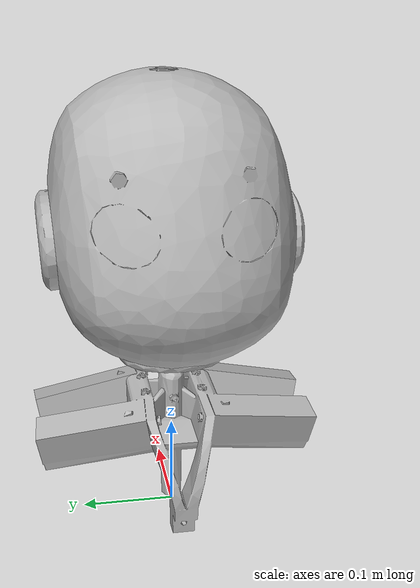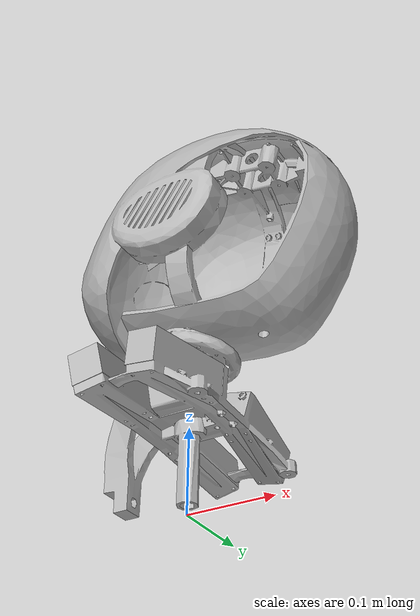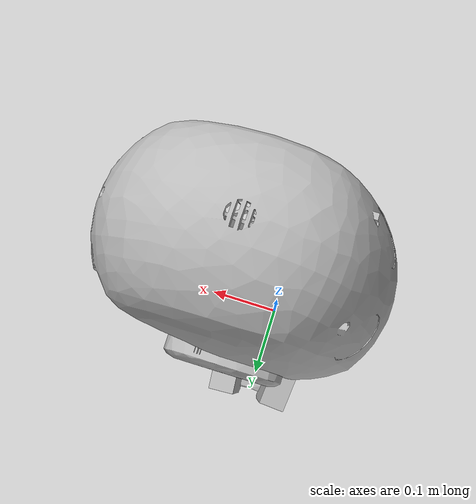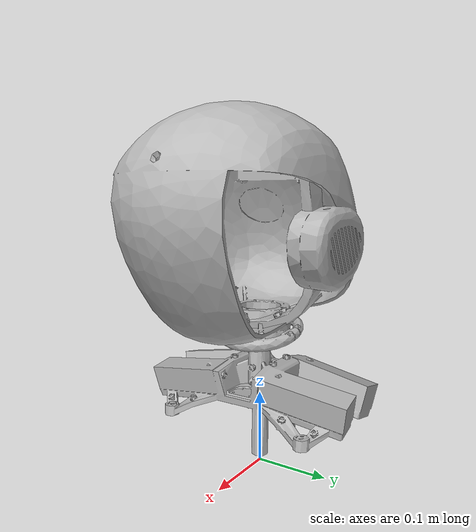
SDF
<?xml version="1.0" ?>
<sdf version="1.6">
	<model name="roboy_head">
		<link name="head">
			<self_collide>false</self_collide>
			<pose frame="">0.043343116521825514 -0.0006579231032706307 0.32988648983908875 0.0 -0.0 0.0</pose>
			<inertial>
				<pose frame="">0.0 0.0 0.0 0 0 0</pose>
				<mass>2.0916027365726584</mass>
				<inertia>
					<ixx>0.2541668972141082</ixx>
					<ixy>9.265988649279845e-05</ixy>
					<ixz>0.0005770293027702119</ixz>
					<iyy>0.2646742622361008</iyy>
					<iyz>-0.032533217727812896</iyz>
					<izz>0.030488313655092237</izz>
				</inertia>
			</inertial>
			<collision name="head_collision">
				<geometry>
					<mesh>
						<uri>model://roboy_head/meshes/CAD/head.stl</uri>
						<scale>0.001 0.001 0.001</scale>
					</mesh>
				</geometry>
			</collision>
			<visual name="head_visual">
				<geometry>
					<mesh>
						<uri>model://roboy_head/meshes/CAD/head.stl</uri>
						<scale>0.001 0.001 0.001</scale>
					</mesh>
				</geometry>
			</visual>
		</link>
		<link name="torso">
			<self_collide>false</self_collide>
			<pose frame="">0.0 0.0 0.0 0.0 -0.0 0.0</pose>
			<inertial>
				<pose frame="">0.0 0.0 0.0 0 0 0</pose>
				<mass>5.001617084376403</mass>
				<inertia>
					<ixx>0.11225493270614519</ixx>
					<ixy>1.951523120337626e-06</ixy>
					<ixz>1.074924932641358e-07</ixz>
					<iyy>0.07892378546233529</iyy>
					<iyz>0.0005212445483936204</iyz>
					<izz>0.048924511948167305</izz>
				</inertia>
			</inertial>
			<collision name="torso_collision">
				<geometry>
					<mesh>
						<uri>model://roboy_head/meshes/CAD/torso.stl</uri>
						<scale>0.001 0.001 0.001</scale>
					</mesh>
				</geometry>
			</collision>
			<visual name="torso_visual">
				<geometry>
					<mesh>
						<uri>model://roboy_head/meshes/CAD/torso.stl</uri>
						<scale>0.001 0.001 0.001</scale>
					</mesh>
				</geometry>
			</visual>
		</link>
		<link name="sphere_link1">
			<self_collide>false</self_collide>
			<pose frame="">-2.509171502433927e-17 8.237691567918458e-16 0.18105290871626692 0.0 -0.0 0.0</pose>
			<inertial>
				<pose frame="">0.0 0.0 0.0 0 0 0</pose>
				<mass>0.02393810080236979</mass>
				<inertia>
					<ixx>0.0007866522307299437</ixx>
					<ixy>-4.77048955893622e-22</ixy>
					<ixz>-3.584285646063279e-18</ixz>
					<iyy>0.0007866522307299437</iyy>
					<iyz>8.465450562766819e-20</iyz>
					<izz>1.957557958447956e-06</izz>
				</inertia>
			</inertial>
			<collision name="sphere_link1_collision">
				<geometry>
					<mesh>
						<uri>model://roboy_head/meshes/CAD/sphere_link1.stl</uri>
						<scale>0.001 0.001 0.001</scale>
					</mesh>
				</geometry>
			</collision>
			<visual name="sphere_link1_visual">
				<geometry>
					<mesh>
						<uri>model://roboy_head/meshes/CAD/sphere_link1.stl</uri>
						<scale>0.001 0.001 0.001</scale>
					</mesh>
				</geometry>
			</visual>
		</link>
		<link name="shere_link2">
			<self_collide>false</self_collide>
			<pose frame="">-5.4526262094523686e-17 -4.3737588107742814e-11 0.18105290865270035 0.0 -0.0 0.0</pose>
			<inertial>
				<pose frame="">0.0 0.0 0.0 0 0 0</pose>
				<mass>0.01604641725998077</mass>
				<inertia>
					<ixx>0.0005268883458331765</ixx>
					<ixy>5.800481622797449e-22</ixy>
					<ixz>1.3338525145512037e-13</ixz>
					<iyy>0.0005268883458447698</iyy>
					<iyz>1.6306400674181987e-19</iyz>
					<izz>8.842891215780712e-07</izz>
				</inertia>
			</inertial>
			<collision name="shere_link2_collision">
				<geometry>
					<mesh>
						<uri>model://roboy_head/meshes/CAD/shere_link2.stl</uri>
						<scale>0.001 0.001 0.001</scale>
					</mesh>
				</geometry>
			</collision>
			<visual name="shere_link2_visual">
				<geometry>
					<mesh>
						<uri>model://roboy_head/meshes/CAD/shere_link2.stl</uri>
						<scale>0.001 0.001 0.001</scale>
					</mesh>
				</geometry>
			</visual>
		</link>
		<joint name="sphere_axis0" type="revolute">
			<parent>torso</parent>
			<child>sphere_link1</child>
			<pose frame="">-3.0766231495488537e-18 -2.287580856898823e-19 -7.105427357601002e-17 0 0 0</pose>
			<axis>
				<xyz>1 0 0</xyz>
				<limit>
					<lower>-0.5235987755982988</lower>
					<upper>0.5235987755982988</upper>
				</limit>
				<use_parent_model_frame>0</use_parent_model_frame>
			</axis>
		</joint>
		<joint name="sphere_axis1" type="revolute">
			<parent>sphere_link1</parent>
			<child>shere_link2</child>
			<pose frame="">2.6357923920635553e-17 4.373841164814152e-11 6.356650317229651e-11 0 0 0</pose>
			<axis>
				<xyz>0 -1 0</xyz>
				<limit>
					<lower>-0.5235987755982988</lower>
					<upper>0.5235987755982988</upper>
				</limit>
				<use_parent_model_frame>0</use_parent_model_frame>
			</axis>
		</joint>
		<joint name="sphere_axis2" type="revolute">
			<parent>shere_link2</parent>
			<child>head</child>
			<pose frame="">-0.043343116521825535 0.0006579231032714541 -0.14883358112282188 0 0 0</pose>
			<axis>
				<xyz>0 0 1.0</xyz>
				<limit>
					<lower>-0.5235987755982988</lower>
					<upper>0.5235987755982988</upper>
				</limit>
				<use_parent_model_frame>0</use_parent_model_frame>
			</axis>
		</joint>
		<plugin filename="libmusc_plugin.so" name="musc_plugin">
			<myoMuscle name="motor0">
				<link name="torso">
					<viaPoint type="FIXPOINT">-0.044515873503976525 0.05130415696557318 0.14013164778771064</viaPoint>
				</link>
				<link name="head">
					<viaPoint type="FIXPOINT">-0.056778827557716634 0.0504219832806716 -0.13316479892073055</viaPoint>
				</link>
			</myoMuscle>
			<myoMuscle name="motor1">
				<link name="torso">
					<viaPoint type="FIXPOINT">0.043477592867193354 0.05124511014858472 0.14032796048060783</viaPoint>
				</link>
				<link name="head">
					<viaPoint type="FIXPOINT">-0.029607449497106017 0.05042198328067151 -0.13836201662060052</viaPoint>
				</link>
			</myoMuscle>
			<myoMuscle name="motor2">
				<link name="torso">
					<viaPoint type="FIXPOINT">0.04347759286719293 -0.05124511014858369 0.1403279604806084</viaPoint>
				</link>
				<link name="head">
					<viaPoint type="FIXPOINT">-0.029537990226039423 -0.04910613707412861 -0.13796809351939526</viaPoint>
				</link>
			</myoMuscle>
			<myoMuscle name="motor3">
				<link name="torso">
					<viaPoint type="FIXPOINT">-0.04451587350397663 -0.051304156965572084 0.14013164778771026</viaPoint>
				</link>
				<link name="head">
					<viaPoint type="FIXPOINT">-0.056848286828783644 -0.04910613707412852 -0.1335587220219351</viaPoint>
				</link>
			</myoMuscle>
			<marker link="head">-0.12324876568227923 0.06073391699020229 0.07328385523801742</marker>
		</plugin>
	</model>
</sdf>
